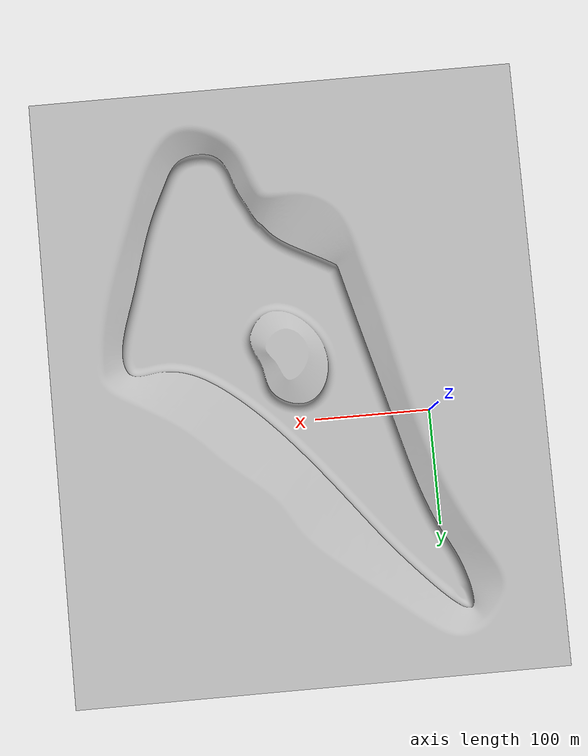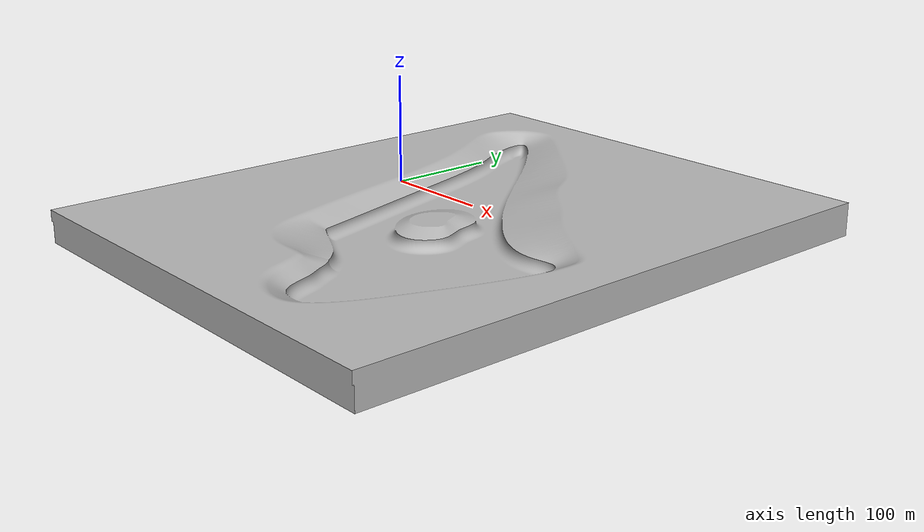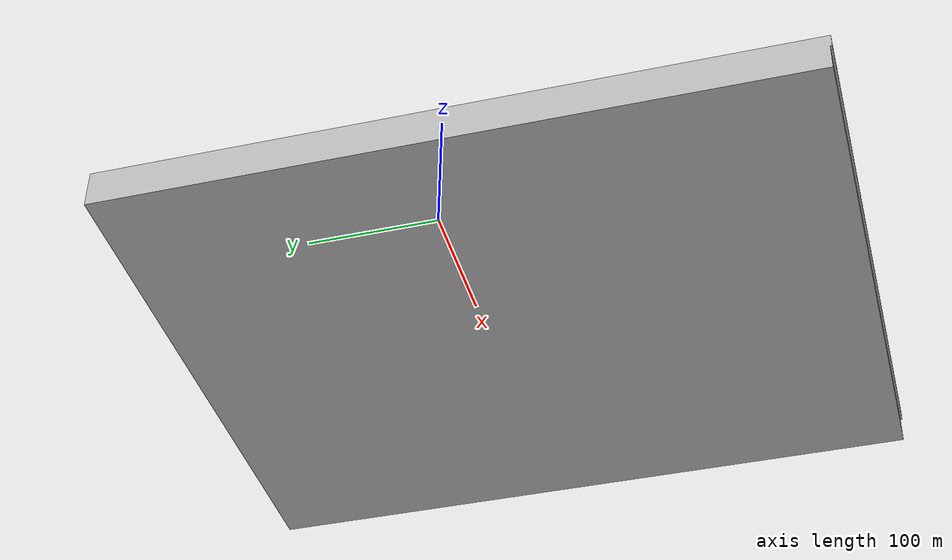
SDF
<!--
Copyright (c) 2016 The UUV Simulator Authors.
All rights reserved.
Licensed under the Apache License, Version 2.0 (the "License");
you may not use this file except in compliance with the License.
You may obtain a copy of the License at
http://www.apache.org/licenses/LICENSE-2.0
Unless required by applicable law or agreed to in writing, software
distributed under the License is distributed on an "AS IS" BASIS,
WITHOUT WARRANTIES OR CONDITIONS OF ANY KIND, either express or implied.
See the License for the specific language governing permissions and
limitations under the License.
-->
<?xml version="1.0" ?>
<sdf version="1.4">

<model name="lake">
    <static>true</static>
    <link name="lake_link">
        <visual name="lake_bottom">
            <cast_shadows>false</cast_shadows>
            <pose>-100 -300 11.5 4.71238898038 0 0</pose>
            <geometry>
                <mesh><uri>model://symphonie_lake/meshes/lake.STL</uri><scale>1 1 1</scale></mesh>
            </geometry>
            <material>
              <script>
                <uri>file://Media/materials/scripts/sand.material</uri>
                <name>UUVSimulator/SandAndStones</name>
              </script>
            </material>
        </visual>

        <collision name="lake_bottom">
            <pose>-100 -300 11.5 4.71238898038 0 0</pose>
            <geometry>
                <mesh><uri>model://symphonie_lake/meshes/lake.STL</uri><scale>1 1 1</scale></mesh>
            </geometry>
        </collision>

    </link>
</model>

</sdf>
